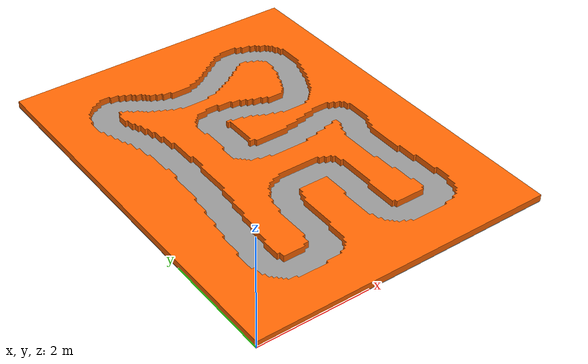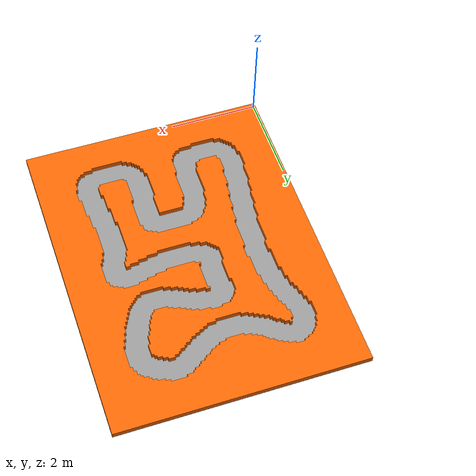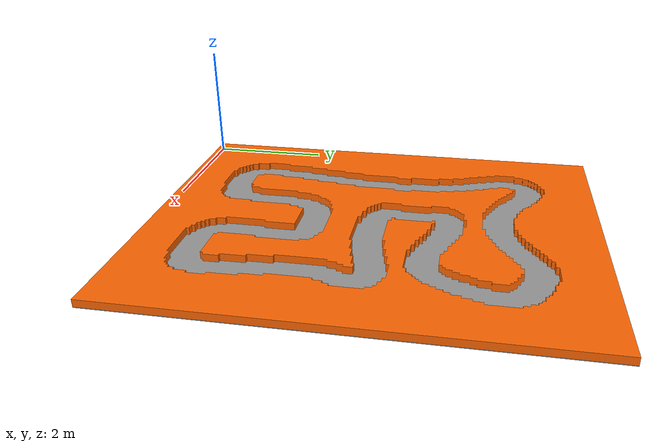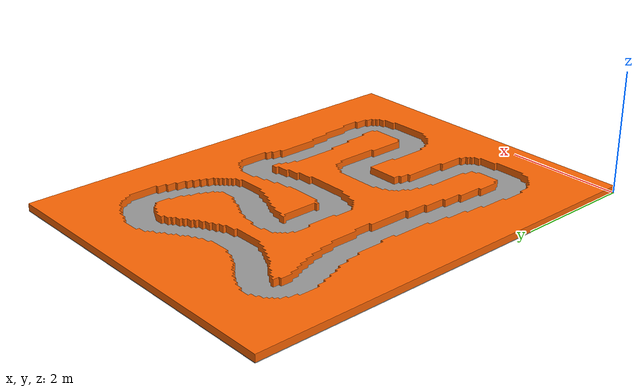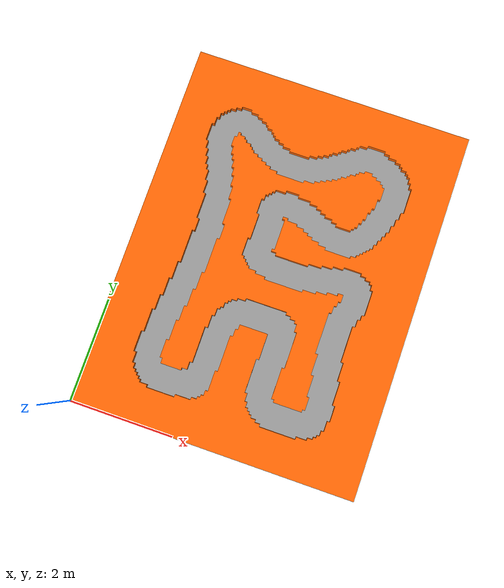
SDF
<sdf version="1.6">
  <world name="empty">
    <physics name="1ms" type="ignored">
      <max_step_size>0.001</max_step_size>
      <real_time_factor>10.0</real_time_factor>
    </physics>
    <plugin filename="gz-sim-physics-system"
            name="gz::sim::systems::Physics"/>
    <plugin filename="gz-sim-sensors-system" name="gz::sim::systems::Sensors">
      <render_engine>ogre2</render_engine>
    </plugin>
    <plugin filename="gz-sim-user-commands-system"
            name="gz::sim::systems::UserCommands"/>
    <plugin filename="gz-sim-scene-broadcaster-system"
            name="gz::sim::systems::SceneBroadcaster"/>
    <scene>
      <ambient>1.0 1.0 1.0</ambient>
      <background>0.8 0.8 0.8</background>
      <sky/>
    </scene>
    <model name="base_plate">
      <pose>2.750 3.575 -0.005 0 0 0</pose>
      <static>true</static>
      <link name="link">
        <collision name="collision">
          <geometry>
            <box><size>5.500 7.150 0.01</size></box>
          </geometry>
        </collision>
        <visual name="visual">
          <geometry>
            <box><size>5.500 7.150 0.01</size></box>
          </geometry>
          <material>
            <ambient>0.6 0.6 0.6 1</ambient>
            <diffuse>0.6 0.6 0.6 1</diffuse>
          </material>
        </visual>
      </link>
    </model>
    <light type="directional" name="sun">
      <pose>0 0 10 0 0 0</pose>
      <diffuse>1 1 1 1</diffuse>
      <specular>0.5 0.5 0.5 1</specular>
      <direction>-0.5 0.1 -0.9</direction>
    </light>
    <model name="turtlebot_track_01">
      <static>true</static>
      <link name="track">
        <visual name="track_visual">
          <geometry><mesh><uri>../meshes/turtlebot_track_01.stl</uri></mesh></geometry>
          <material>
            <ambient>1 0.4 0 1</ambient>
            <diffuse>1 0.4 0.01 1</diffuse>
          </material>
        </visual>
        <collision name="track_collision">
          <geometry><mesh><uri>../meshes/turtlebot_track_01.stl</uri></mesh></geometry>
        </collision>
      </link>
    </model>
  </world>
</sdf>
